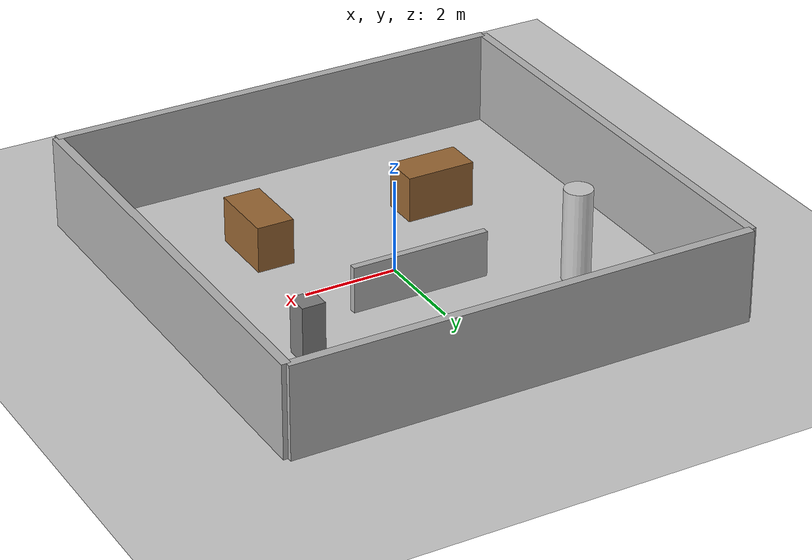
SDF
<?xml version="1.0" ?>
<sdf version="1.9">
  <world name="portamail_office">

    <!-- Physics Settings -->
    <physics name="default_physics" default="true" type="ode">
      <max_step_size>0.001</max_step_size>
      <real_time_factor>1.0</real_time_factor>
      <real_time_update_rate>1000</real_time_update_rate>
    </physics>

    <!-- Lighting -->
    <light name="sun" type="directional">
      <cast_shadows>true</cast_shadows>
      <pose>0 0 10 0 0 0</pose>
      <diffuse>0.8 0.8 0.8 1</diffuse>
      <specular>0.2 0.2 0.2 1</specular>
      <attenuation>
        <range>1000</range>
        <constant>0.9</constant>
        <linear>0.01</linear>
        <quadratic>0.001</quadratic>
      </attenuation>
      <direction>-0.5 0.1 -0.9</direction>
    </light>

    <!-- Ground Plane -->
    <model name="ground_plane">
      <static>true</static>
      <link name="link">
        <collision name="collision">
          <geometry>
            <plane>
              <normal>0 0 1</normal>
              <size>100 100</size>
            </plane>
          </geometry>
        </collision>
        <visual name="visual">
          <geometry>
            <plane>
              <normal>0 0 1</normal>
              <size>100 100</size>
            </plane>
          </geometry>
          <material>
            <ambient>0.8 0.8 0.8 1</ambient>
            <diffuse>0.8 0.8 0.8 1</diffuse>
          </material>
        </visual>
      </link>
    </model>

    <!-- Office Building Perimeter Walls -->
    <!-- Front Wall -->
    <model name="wall_front">
      <static>true</static>
      <pose>0 -5 1 0 0 0</pose>
      <link name="link">
        <collision name="collision">
          <geometry>
            <box>
              <size>10 0.2 2</size>
            </box>
          </geometry>
        </collision>
        <visual name="visual">
          <geometry>
            <box>
              <size>10 0.2 2</size>
            </box>
          </geometry>
          <material>
            <ambient>0.7 0.7 0.7 1</ambient>
            <diffuse>0.7 0.7 0.7 1</diffuse>
          </material>
        </visual>
      </link>
    </model>

    <!-- Back Wall -->
    <model name="wall_back">
      <static>true</static>
      <pose>0 5 1 0 0 0</pose>
      <link name="link">
        <collision name="collision">
          <geometry>
            <box>
              <size>10 0.2 2</size>
            </box>
          </geometry>
        </collision>
        <visual name="visual">
          <geometry>
            <box>
              <size>10 0.2 2</size>
            </box>
          </geometry>
          <material>
            <ambient>0.7 0.7 0.7 1</ambient>
            <diffuse>0.7 0.7 0.7 1</diffuse>
          </material>
        </visual>
      </link>
    </model>

    <!-- Left Wall -->
    <model name="wall_left">
      <static>true</static>
      <pose>-5 0 1 0 0 0</pose>
      <link name="link">
        <collision name="collision">
          <geometry>
            <box>
              <size>0.2 10 2</size>
            </box>
          </geometry>
        </collision>
        <visual name="visual">
          <geometry>
            <box>
              <size>0.2 10 2</size>
            </box>
          </geometry>
          <material>
            <ambient>0.7 0.7 0.7 1</ambient>
            <diffuse>0.7 0.7 0.7 1</diffuse>
          </material>
        </visual>
      </link>
    </model>

    <!-- Right Wall -->
    <model name="wall_right">
      <static>true</static>
      <pose>5 0 1 0 0 0</pose>
      <link name="link">
        <collision name="collision">
          <geometry>
            <box>
              <size>0.2 10 2</size>
            </box>
          </geometry>
        </collision>
        <visual name="visual">
          <geometry>
            <box>
              <size>0.2 10 2</size>
            </box>
          </geometry>
          <material>
            <ambient>0.7 0.7 0.7 1</ambient>
            <diffuse>0.7 0.7 0.7 1</diffuse>
          </material>
        </visual>
      </link>
    </model>

    <!-- Interior Obstacles (Office Desks/Cubicles) -->
    <!-- Desk 1 -->
    <model name="desk_1">
      <static>true</static>
      <pose>-2 -2 0.5 0 0 0</pose>
      <link name="link">
        <collision name="collision">
          <geometry>
            <box>
              <size>1.5 0.8 1.0</size>
            </box>
          </geometry>
        </collision>
        <visual name="visual">
          <geometry>
            <box>
              <size>1.5 0.8 1.0</size>
            </box>
          </geometry>
          <material>
            <ambient>0.6 0.4 0.2 1</ambient>
            <diffuse>0.6 0.4 0.2 1</diffuse>
          </material>
        </visual>
      </link>
    </model>

    <!-- Desk 2 -->
    <model name="desk_2">
      <static>true</static>
      <pose>2 -2 0.5 0 0 1.57</pose>
      <link name="link">
        <collision name="collision">
          <geometry>
            <box>
              <size>1.5 0.8 1.0</size>
            </box>
          </geometry>
        </collision>
        <visual name="visual">
          <geometry>
            <box>
              <size>1.5 0.8 1.0</size>
            </box>
          </geometry>
          <material>
            <ambient>0.6 0.4 0.2 1</ambient>
            <diffuse>0.6 0.4 0.2 1</diffuse>
          </material>
        </visual>
      </link>
    </model>

    <!-- Filing Cabinet -->
    <model name="filing_cabinet">
      <static>true</static>
      <pose>3 2 0.6 0 0 0</pose>
      <link name="link">
        <collision name="collision">
          <geometry>
            <box>
              <size>0.5 0.5 1.2</size>
            </box>
          </geometry>
        </collision>
        <visual name="visual">
          <geometry>
            <box>
              <size>0.5 0.5 1.2</size>
            </box>
          </geometry>
          <material>
            <ambient>0.5 0.5 0.5 1</ambient>
            <diffuse>0.5 0.5 0.5 1</diffuse>
          </material>
        </visual>
      </link>
    </model>

    <!-- Cylindrical Pillar -->
    <model name="pillar">
      <static>true</static>
      <pose>-3 2 1 0 0 0</pose>
      <link name="link">
        <collision name="collision">
          <geometry>
            <cylinder>
              <radius>0.3</radius>
              <length>2.0</length>
            </cylinder>
          </geometry>
        </collision>
        <visual name="visual">
          <geometry>
            <cylinder>
              <radius>0.3</radius>
              <length>2.0</length>
            </cylinder>
          </geometry>
          <material>
            <ambient>0.8 0.8 0.8 1</ambient>
            <diffuse>0.8 0.8 0.8 1</diffuse>
          </material>
        </visual>
      </link>
    </model>

    <!-- Narrow Corridor Obstacle -->
    <model name="corridor_wall">
      <static>true</static>
      <pose>0 1 0.5 0 0 0</pose>
      <link name="link">
        <collision name="collision">
          <geometry>
            <box>
              <size>3 0.15 1.0</size>
            </box>
          </geometry>
        </collision>
        <visual name="visual">
          <geometry>
            <box>
              <size>3 0.15 1.0</size>
            </box>
          </geometry>
          <material>
            <ambient>0.7 0.7 0.7 1</ambient>
            <diffuse>0.7 0.7 0.7 1</diffuse>
          </material>
        </visual>
      </link>
    </model>

    <!-- Small Boxes for detailed mapping -->
    <model name="box_1">
      <static>true</static>
      <pose>1 3 0.2 0 0 0.5</pose>
      <link name="link">
        <collision name="collision">
          <geometry>
            <box>
              <size>0.4 0.4 0.4</size>
            </box>
          </geometry>
        </collision>
        <visual name="visual">
          <geometry>
            <box>
              <size>0.4 0.4 0.4</size>
            </box>
          </geometry>
          <material>
            <ambient>0.8 0.5 0.3 1</ambient>
            <diffuse>0.8 0.5 0.3 1</diffuse>
          </material>
        </visual>
      </link>
    </model>

    <model name="box_2">
      <static>true</static>
      <pose>-1 3 0.2 0 0 -0.3</pose>
      <link name="link">
        <collision name="collision">
          <geometry>
            <box>
              <size>0.4 0.4 0.4</size>
            </box>
          </geometry>
        </collision>
        <visual name="visual">
          <geometry>
            <box>
              <size>0.4 0.4 0.4</size>
            </box>
          </geometry>
          <material>
            <ambient>0.8 0.5 0.3 1</ambient>
            <diffuse>0.8 0.5 0.3 1</diffuse>
          </material>
        </visual>
      </link>
    </model>

  </world>
</sdf>
